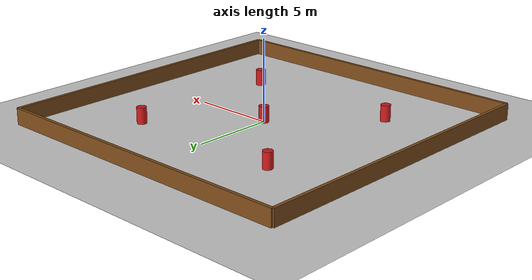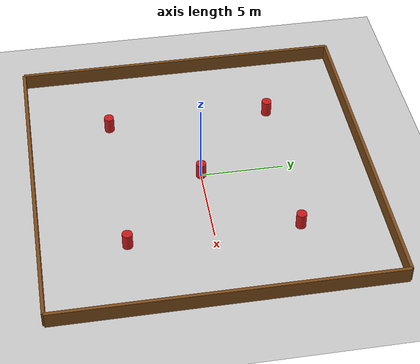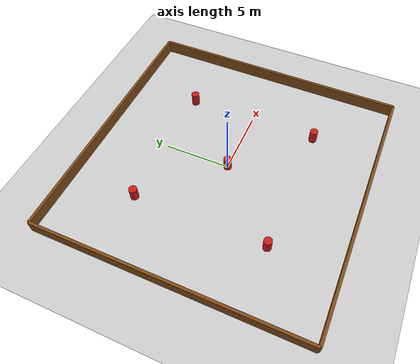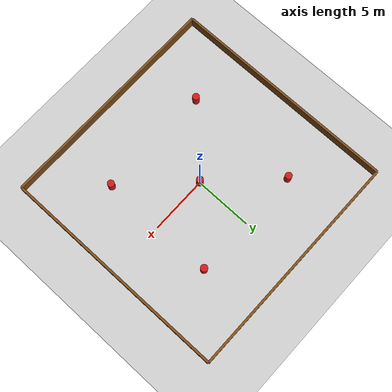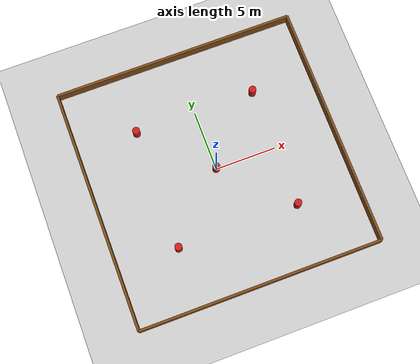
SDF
<?xml version="1.0"?>
<sdf version="1.8">
  <world name="swarm_world">

    <physics name="1ms" type="ignored">
      <max_step_size>0.001</max_step_size>
      <real_time_factor>1.0</real_time_factor>
    </physics>

    <!-- Gz Harmonic plugins — CHỈ dùng gz-sim-*, xóa hết ignition-* -->
    <plugin filename="libignition-gazebo6-physics-system.so"
            name="ignition::gazebo::systems::Physics"/>
    <plugin filename="libignition-gazebo6-user-commands-system.so"
            name="ignition::gazebo::systems::UserCommands"/>
    <plugin filename="libignition-gazebo6-scene-broadcaster-system.so"
            name="ignition::gazebo::systems::SceneBroadcaster"/>
    <plugin filename="libignition-gazebo6-sensors-system.so"
            name="ignition::gazebo::systems::Sensors">
      <render_engine>ogre2</render_engine>
    </plugin>

    <light name="sun" type="directional">
      <cast_shadows>true</cast_shadows>
      <pose>0 0 10 0 0 0</pose>
      <diffuse>0.8 0.8 0.8 1</diffuse>
      <specular>0.2 0.2 0.2 1</specular>
      <direction>-0.5 0.1 -0.9</direction>
    </light>

    <!-- Ground -->
    <model name="ground_plane">
      <static>true</static>
      <link name="link">
        <collision name="collision">
          <geometry><plane><normal>0 0 1</normal><size>50 50</size></plane></geometry>
        </collision>
        <visual name="visual">
          <geometry><plane><normal>0 0 1</normal><size>50 50</size></plane></geometry>
          <material>
            <ambient>0.8 0.8 0.8 1</ambient>
            <diffuse>0.8 0.8 0.8 1</diffuse>
          </material>
        </visual>
      </link>
    </model>

    <!-- Boundary walls -->
    <model name="wall_north">
      <static>true</static>
      <pose>0 10 0.5 0 0 0</pose>
      <link name="link">
        <collision name="c"><geometry><box><size>20 0.2 1</size></box></geometry></collision>
        <visual name="v"><geometry><box><size>20 0.2 1</size></box></geometry>
          <material><ambient>0.5 0.3 0.1 1</ambient><diffuse>0.5 0.3 0.1 1</diffuse></material>
        </visual>
      </link>
    </model>
    <model name="wall_south">
      <static>true</static>
      <pose>0 -10 0.5 0 0 0</pose>
      <link name="link">
        <collision name="c"><geometry><box><size>20 0.2 1</size></box></geometry></collision>
        <visual name="v"><geometry><box><size>20 0.2 1</size></box></geometry>
          <material><ambient>0.5 0.3 0.1 1</ambient><diffuse>0.5 0.3 0.1 1</diffuse></material>
        </visual>
      </link>
    </model>
    <model name="wall_east">
      <static>true</static>
      <pose>10 0 0.5 0 0 1.5708</pose>
      <link name="link">
        <collision name="c"><geometry><box><size>20 0.2 1</size></box></geometry></collision>
        <visual name="v"><geometry><box><size>20 0.2 1</size></box></geometry>
          <material><ambient>0.5 0.3 0.1 1</ambient><diffuse>0.5 0.3 0.1 1</diffuse></material>
        </visual>
      </link>
    </model>
    <model name="wall_west">
      <static>true</static>
      <pose>-10 0 0.5 0 0 1.5708</pose>
      <link name="link">
        <collision name="c"><geometry><box><size>20 0.2 1</size></box></geometry></collision>
        <visual name="v"><geometry><box><size>20 0.2 1</size></box></geometry>
          <material><ambient>0.5 0.3 0.1 1</ambient><diffuse>0.5 0.3 0.1 1</diffuse></material>
        </visual>
      </link>
    </model>

    <!-- Pillars -->
    <model name="pillar_1"><static>true</static><pose>-5 5 0.5 0 0 0</pose>
      <link name="link">
        <collision name="c"><geometry><cylinder><radius>0.3</radius><length>1</length></cylinder></geometry></collision>
        <visual name="v"><geometry><cylinder><radius>0.3</radius><length>1</length></cylinder></geometry>
          <material><ambient>0.8 0.1 0.1 1</ambient><diffuse>0.8 0.1 0.1 1</diffuse></material>
        </visual>
      </link>
    </model>
    <model name="pillar_2"><static>true</static><pose>5 5 0.5 0 0 0</pose>
      <link name="link">
        <collision name="c"><geometry><cylinder><radius>0.3</radius><length>1</length></cylinder></geometry></collision>
        <visual name="v"><geometry><cylinder><radius>0.3</radius><length>1</length></cylinder></geometry>
          <material><ambient>0.8 0.1 0.1 1</ambient><diffuse>0.8 0.1 0.1 1</diffuse></material>
        </visual>
      </link>
    </model>
    <model name="pillar_3"><static>true</static><pose>0 0 0.5 0 0 0</pose>
      <link name="link">
        <collision name="c"><geometry><cylinder><radius>0.3</radius><length>1</length></cylinder></geometry></collision>
        <visual name="v"><geometry><cylinder><radius>0.3</radius><length>1</length></cylinder></geometry>
          <material><ambient>0.8 0.1 0.1 1</ambient><diffuse>0.8 0.1 0.1 1</diffuse></material>
        </visual>
      </link>
    </model>
    <model name="pillar_4"><static>true</static><pose>-5 -5 0.5 0 0 0</pose>
      <link name="link">
        <collision name="c"><geometry><cylinder><radius>0.3</radius><length>1</length></cylinder></geometry></collision>
        <visual name="v"><geometry><cylinder><radius>0.3</radius><length>1</length></cylinder></geometry>
          <material><ambient>0.8 0.1 0.1 1</ambient><diffuse>0.8 0.1 0.1 1</diffuse></material>
        </visual>
      </link>
    </model>
    <model name="pillar_5"><static>true</static><pose>5 -5 0.5 0 0 0</pose>
      <link name="link">
        <collision name="c"><geometry><cylinder><radius>0.3</radius><length>1</length></cylinder></geometry></collision>
        <visual name="v"><geometry><cylinder><radius>0.3</radius><length>1</length></cylinder></geometry>
          <material><ambient>0.8 0.1 0.1 1</ambient><diffuse>0.8 0.1 0.1 1</diffuse></material>
        </visual>
      </link>
    </model>

  </world>
</sdf>
